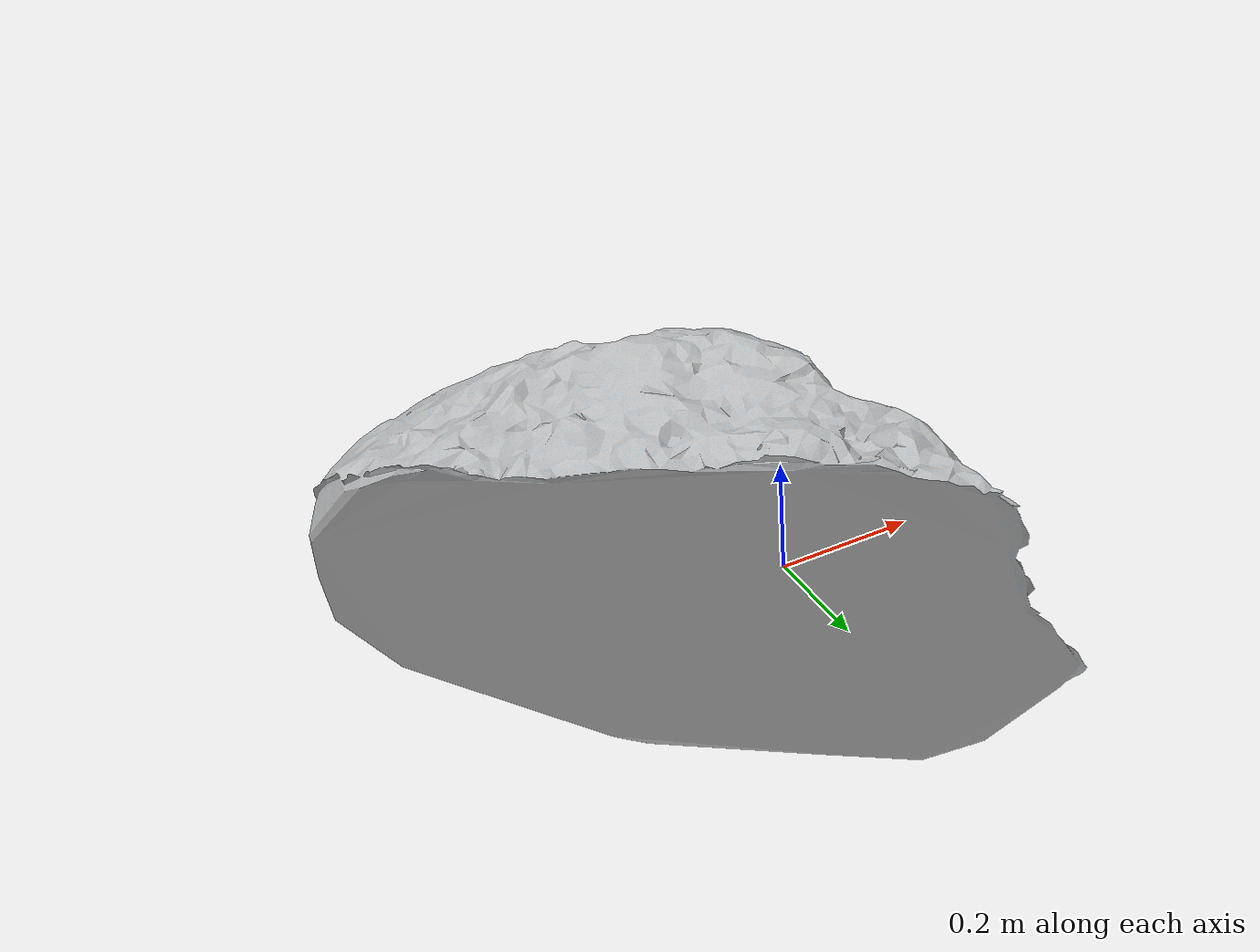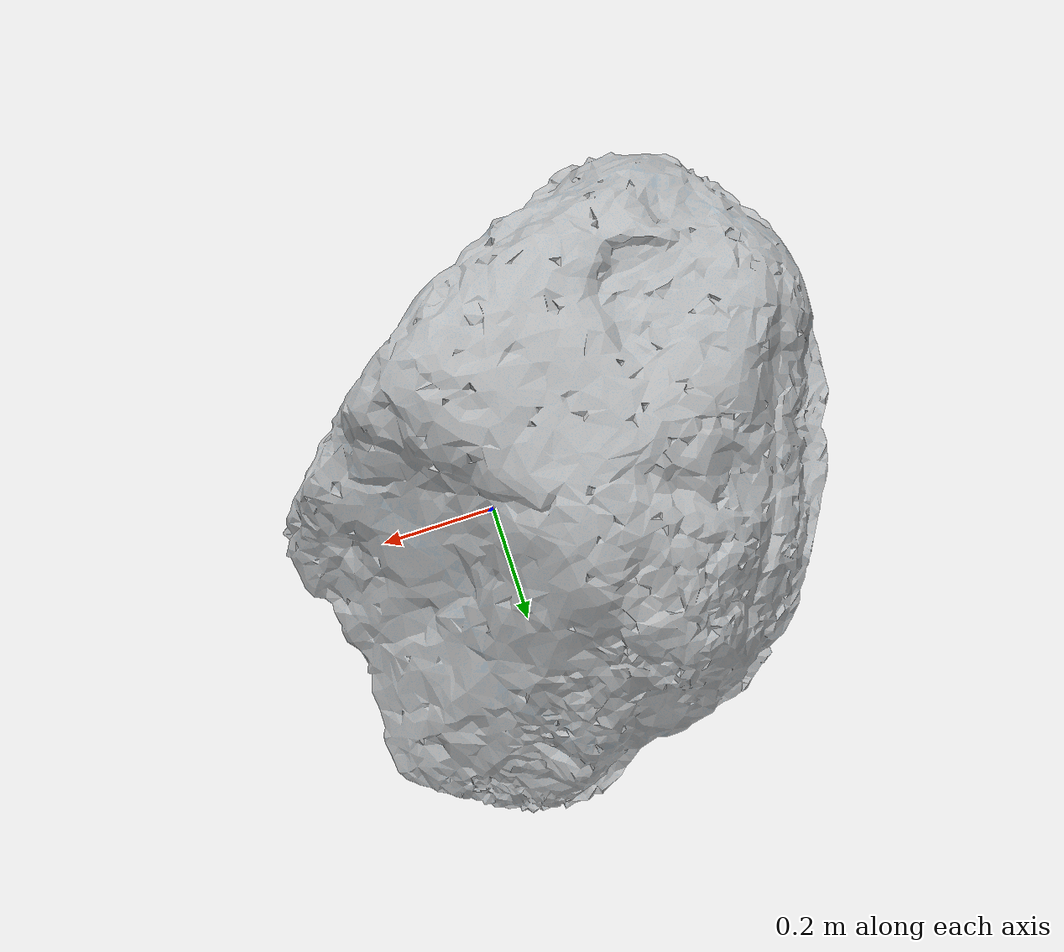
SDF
<?xml version="1.0" ?>
<sdf version='1.5'>
  <model name="boulder_2">
      <static>false</static>
      <link name='boulder_2_link'>
 	<inertial>
        	<mass>5</mass>
        	<inertia>
          	<ixx>1</ixx>
          	<ixy>0</ixy>
          	<ixz>0</ixz>
          	<iyy>1</iyy>
          	<iyz>0</iyz>
          	<izz>1</izz>
        	</inertia>
      	</inertial>
        <collision name='boulder_2_collision'>
          <geometry>
            <box>
              <size>1 1 0.01</size>
            </box>
          </geometry>
        </collision>

        <visual name='boulder_2_mesh'>
	  <cast_shadows>true</cast_shadows>
          <geometry>
            <mesh>
              <uri>model://boulder_2/meshes/model.dae</uri>
              <scale>1 1 1</scale>
            </mesh>
          </geometry>
        </visual>
      </link>
  </model>
</sdf>
